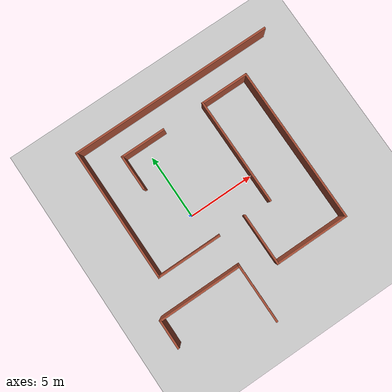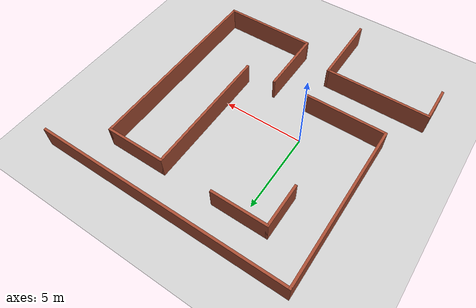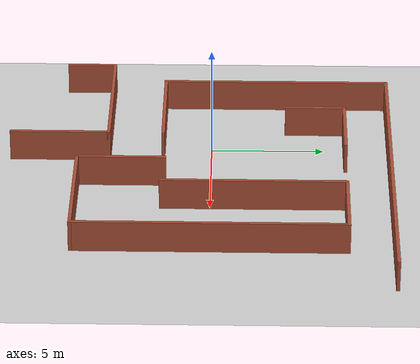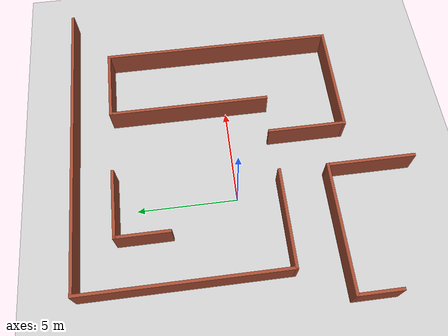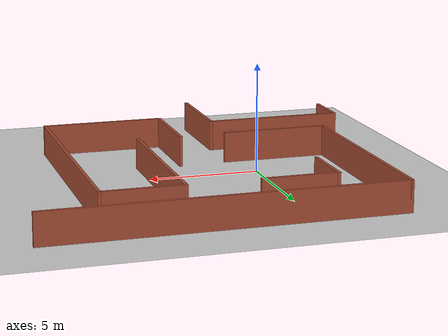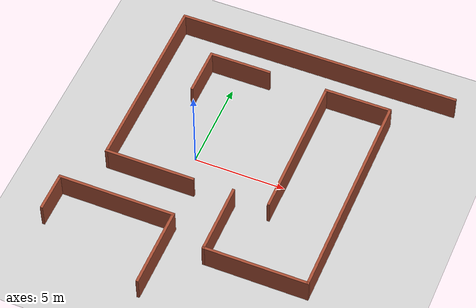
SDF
<?xml version="1.0" ?>
<sdf version="1.5">
  <world name="void">

    <physics name="1ms" type="ignored">
      <max_step_size>0.001</max_step_size>
      <real_time_factor>1.0</real_time_factor>
    </physics>

    <plugin name='gz::sim::systems::Physics' filename='gz-sim-physics-system' />
    <plugin name='gz::sim::systems::UserCommands' filename='gz-sim-user-commands-system' />
    <plugin name='gz::sim::systems::SceneBroadcaster' filename='gz-sim-scene-broadcaster-system' />
    <plugin name='gz::sim::systems::Contact' filename='gz-sim-contact-system' />

    <model name="ground_plane">
      <static>true</static>
      <link name="link">
        <collision name="collision">
          <geometry>
            <plane>
              <normal>0 0 1</normal>
              <size>100 100</size>
            </plane>
          </geometry>
          <surface>
            <friction>
              <ode>
                <mu>100</mu>
                <mu2>50</mu2>
              </ode>
            </friction>
          </surface>
        </collision>
        <visual name="ground_visual">
          <geometry>
            <plane>
              <normal>0 0 1</normal>
              <size>100 100</size>
            </plane>
          </geometry>
          <material>
            <ambient>0.6 0.6 0.6 1</ambient>
            <diffuse>0.8 0.8 0.8 1</diffuse>
            <specular>0.1 0.1 0.1 1</specular>
            <emissive>0 0 0 1</emissive>
          </material>
          <cast_shadows>false</cast_shadows>
        </visual>
      </link>
    </model>

    <include>
      <uri>model://maze</uri>
      <name>maze</name>
      <pose>3.0 -0.5 -0.1 0 0 0</pose>
    </include>

    <include>
      <uri>https://fuel.gazebosim.org/1.0/OpenRobotics/models/Sun</uri>
    </include>

  </world>
</sdf>

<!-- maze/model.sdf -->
<sdf version='1.7'>
  <model name='maze'>
    <pose>1.384 -1.5665 0 0 -0 0</pose>
    <link name='Wall_0'>
      <collision name='Wall_0_Collision'>
        <geometry>
          <box>
            <size>5 0.15 1.5</size>
          </box>
        </geometry>
        <pose>0 0 0.75 0 -0 0</pose>
      </collision>
      <visual name='Wall_0_Visual'>
        <pose>0 0 0.75 0 -0 0</pose>
        <geometry>
          <box>
            <size>5 0.15 1.5</size>
          </box>
        </geometry>
        <material>
          <script>
            <uri>file://media/materials/scripts/gazebo.material</uri>
            <name>Gazebo/Bricks</name>
          </script>
          <ambient>1 1 1 1</ambient>
        </material>
        <meta>
          <layer>0</layer>
        </meta>
      </visual>
      <pose>-4.619 -1.6635 0 0 -0 3.14159</pose>
    </link>
    <link name='Wall_1'>
      <collision name='Wall_1_Collision'>
        <geometry>
          <box>
            <size>10.25 0.15 1.5</size>
          </box>
        </geometry>
        <pose>0 0 0.75 0 -0 0</pose>
      </collision>
      <visual name='Wall_1_Visual'>
        <pose>0 0 0.75 0 -0 0</pose>
        <geometry>
          <box>
            <size>10.25 0.15 1.5</size>
          </box>
        </geometry>
        <material>
          <script>
            <uri>file://media/materials/scripts/gazebo.material</uri>
            <name>Gazebo/Bricks</name>
          </script>
          <ambient>1 1 1 1</ambient>
        </material>
        <meta>
          <layer>0</layer>
        </meta>
      </visual>
      <pose>-7.044 3.3865 0 0 -0 1.5708</pose>
    </link>
    <link name='Wall_10'>
      <collision name='Wall_10_Collision'>
        <geometry>
          <box>
            <size>4.5 0.15 1.5</size>
          </box>
        </geometry>
        <pose>0 0 0.75 0 -0 0</pose>
      </collision>
      <visual name='Wall_10_Visual'>
        <pose>0 0 0.75 0 -0 0</pose>
        <geometry>
          <box>
            <size>4.5 0.15 1.5</size>
          </box>
        </geometry>
        <material>
          <script>
            <uri>file://media/materials/scripts/gazebo.material</uri>
            <name>Gazebo/Bricks</name>
          </script>
          <ambient>1 1 1 1</ambient>
        </material>
        <meta>
          <layer>0</layer>
        </meta>
      </visual>
      <pose>-2.206 -6.2615 0 0 -0 -1.5708</pose>
    </link>
    <link name='Wall_13'>
      <collision name='Wall_13_Collision'>
        <geometry>
          <box>
            <size>6.5 0.15 1.5</size>
          </box>
        </geometry>
        <pose>0 0 0.75 0 -0 0</pose>
      </collision>
      <visual name='Wall_13_Visual'>
        <pose>0 0 0.75 0 -0 0</pose>
        <geometry>
          <box>
            <size>6.5 0.15 1.5</size>
          </box>
        </geometry>
        <material>
          <script>
            <uri>file://media/materials/scripts/gazebo.material</uri>
            <name>Gazebo/Bricks</name>
          </script>
          <ambient>1 1 1 1</ambient>
        </material>
        <meta>
          <layer>0</layer>
        </meta>
      </visual>
      <pose>-5.381 -4.0865 0 0 -0 3.14159</pose>
    </link>
    <link name='Wall_14'>
      <collision name='Wall_14_Collision'>
        <geometry>
          <box>
            <size>2.25 0.15 1.5</size>
          </box>
        </geometry>
        <pose>0 0 0.75 0 -0 0</pose>
      </collision>
      <visual name='Wall_14_Visual'>
        <pose>0 0 0.75 0 -0 0</pose>
        <geometry>
          <box>
            <size>2.25 0.15 1.5</size>
          </box>
        </geometry>
        <material>
          <script>
            <uri>file://media/materials/scripts/gazebo.material</uri>
            <name>Gazebo/Bricks</name>
          </script>
          <ambient>1 1 1 1</ambient>
        </material>
        <meta>
          <layer>0</layer>
        </meta>
      </visual>
      <pose>-8.556 -5.1365 0 0 -0 -1.5708</pose>
    </link>
    <link name='Wall_16'>
      <collision name='Wall_16_Collision'>
        <geometry>
          <box>
            <size>2.75 0.15 1.5</size>
          </box>
        </geometry>
        <pose>0 0 0.75 0 -0 0</pose>
      </collision>
      <visual name='Wall_16_Visual'>
        <pose>0 0 0.75 0 -0 0</pose>
        <geometry>
          <box>
            <size>2.75 0.15 1.5</size>
          </box>
        </geometry>
        <material>
          <script>
            <uri>file://media/materials/scripts/gazebo.material</uri>
            <name>Gazebo/Bricks</name>
          </script>
          <ambient>1 1 1 1</ambient>
        </material>
        <meta>
          <layer>0</layer>
        </meta>
      </visual>
      <pose>-4.614 5.1695 0 0 -0 1.5708</pose>
    </link>
    <link name='Wall_17'>
      <collision name='Wall_17_Collision'>
        <geometry>
          <box>
            <size>3.5 0.15 1.5</size>
          </box>
        </geometry>
        <pose>0 0 0.75 0 -0 0</pose>
      </collision>
      <visual name='Wall_17_Visual'>
        <pose>0 0 0.75 0 -0 0</pose>
        <geometry>
          <box>
            <size>3.5 0.15 1.5</size>
          </box>
        </geometry>
        <material>
          <script>
            <uri>file://media/materials/scripts/gazebo.material</uri>
            <name>Gazebo/Bricks</name>
          </script>
          <ambient>1 1 1 1</ambient>
        </material>
        <meta>
          <layer>0</layer>
        </meta>
      </visual>
      <pose>-2.939 6.4695 0 0 -0 0</pose>
    </link>
    <link name='Wall_2'>
      <collision name='Wall_2_Collision'>
        <geometry>
          <box>
            <size>15.75 0.15 1.5</size>
          </box>
        </geometry>
        <pose>0 0 0.75 0 -0 0</pose>
      </collision>
      <visual name='Wall_2_Visual'>
        <pose>0 0 0.75 0 -0 0</pose>
        <geometry>
          <box>
            <size>15.75 0.15 1.5</size>
          </box>
        </geometry>
        <material>
          <script>
            <uri>file://media/materials/scripts/gazebo.material</uri>
            <name>Gazebo/Bricks</name>
          </script>
          <ambient>1 1 1 1</ambient>
        </material>
        <meta>
          <layer>0</layer>
        </meta>
      </visual>
      <pose>0.756 8.4365 0 0 -0 0</pose>
    </link>
    <link name='Wall_4'>
      <collision name='Wall_4_Collision'>
        <geometry>
          <box>
            <size>8.25 0.15 1.5</size>
          </box>
        </geometry>
        <pose>0 0 0.75 0 -0 0</pose>
      </collision>
      <visual name='Wall_4_Visual'>
        <pose>0 0 0.75 0 -0 0</pose>
        <geometry>
          <box>
            <size>8.25 0.15 1.5</size>
          </box>
        </geometry>
        <material>
          <script>
            <uri>file://media/materials/scripts/gazebo.material</uri>
            <name>Gazebo/Bricks</name>
          </script>
          <ambient>1 1 1 1</ambient>
        </material>
        <meta>
          <layer>0</layer>
        </meta>
      </visual>
      <pose>2.02 2.4085 0 0 -0 1.5708</pose>
    </link>
    <link name='Wall_5'>
      <collision name='Wall_5_Collision'>
        <geometry>
          <box>
            <size>3.75 0.15 1.5</size>
          </box>
        </geometry>
        <pose>0 0 0.75 0 -0 0</pose>
      </collision>
      <visual name='Wall_5_Visual'>
        <pose>0 0 0.75 0 -0 0</pose>
        <geometry>
          <box>
            <size>3.75 0.15 1.5</size>
          </box>
        </geometry>
        <material>
          <script>
            <uri>file://media/materials/scripts/gazebo.material</uri>
            <name>Gazebo/Bricks</name>
          </script>
          <ambient>1 1 1 1</ambient>
        </material>
        <meta>
          <layer>0</layer>
        </meta>
      </visual>
      <pose>3.82 6.4585 0 0 -0 0</pose>
    </link>
    <link name='Wall_6'>
      <collision name='Wall_6_Collision'>
        <geometry>
          <box>
            <size>12 0.15 1.5</size>
          </box>
        </geometry>
        <pose>0 0 0.75 0 -0 0</pose>
      </collision>
      <visual name='Wall_6_Visual'>
        <pose>0 0 0.75 0 -0 0</pose>
        <geometry>
          <box>
            <size>12 0.15 1.5</size>
          </box>
        </geometry>
        <material>
          <script>
            <uri>file://media/materials/scripts/gazebo.material</uri>
            <name>Gazebo/Bricks</name>
          </script>
          <ambient>1 1 1 1</ambient>
        </material>
        <meta>
          <layer>0</layer>
        </meta>
      </visual>
      <pose>5.62 0.5335 0 0 -0 -1.5708</pose>
    </link>
    <link name='Wall_7'>
      <collision name='Wall_7_Collision'>
        <geometry>
          <box>
            <size>5.75 0.15 1.5</size>
          </box>
        </geometry>
        <pose>0 0 0.75 0 -0 0</pose>
      </collision>
      <visual name='Wall_7_Visual'>
        <pose>0 0 0.75 0 -0 0</pose>
        <geometry>
          <box>
            <size>5.75 0.15 1.5</size>
          </box>
        </geometry>
        <material>
          <script>
            <uri>file://media/materials/scripts/gazebo.material</uri>
            <name>Gazebo/Bricks</name>
          </script>
          <ambient>1 1 1 1</ambient>
        </material>
        <meta>
          <layer>0</layer>
        </meta>
      </visual>
      <pose>2.82 -5.3915 0 0 -0 3.14159</pose>
    </link>
    <link name='Wall_8'>
      <collision name='Wall_8_Collision'>
        <geometry>
          <box>
            <size>4 0.15 1.5</size>
          </box>
        </geometry>
        <pose>0 0 0.75 0 -0 0</pose>
      </collision>
      <visual name='Wall_8_Visual'>
        <pose>0 0 0.75 0 -0 0</pose>
        <geometry>
          <box>
            <size>4 0.15 1.5</size>
          </box>
        </geometry>
        <material>
          <script>
            <uri>file://media/materials/scripts/gazebo.material</uri>
            <name>Gazebo/Bricks</name>
          </script>
          <ambient>1 1 1 1</ambient>
        </material>
        <meta>
          <layer>0</layer>
        </meta>
      </visual>
      <pose>0.02 -3.4665 0 0 -0 1.5708</pose>
    </link>
    <static>1</static>
  </model>
</sdf>
